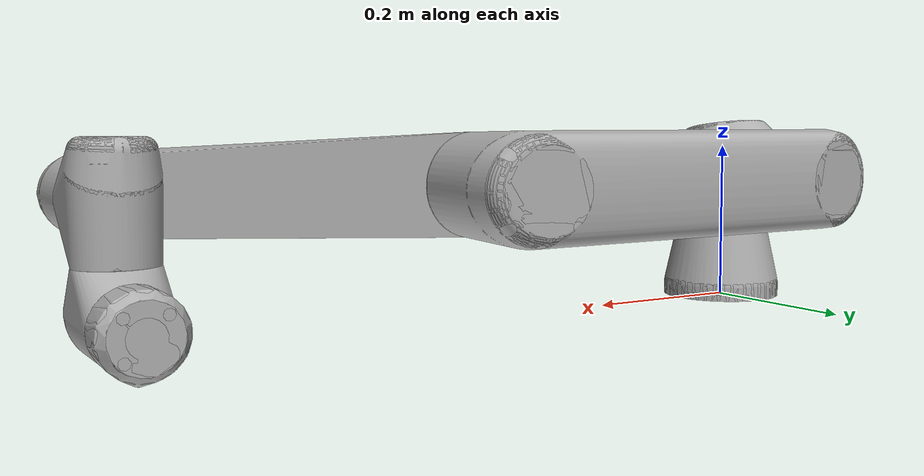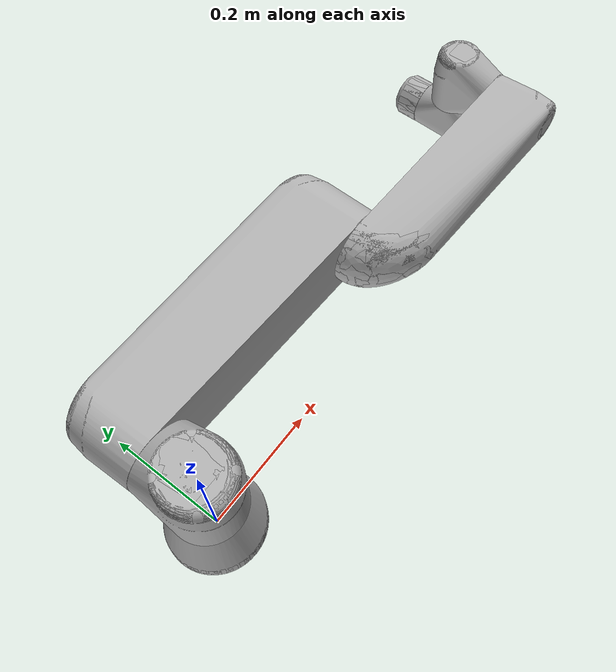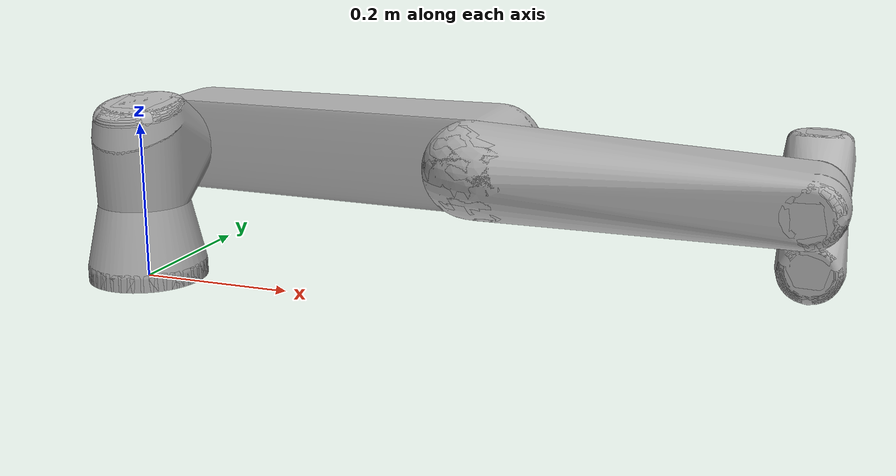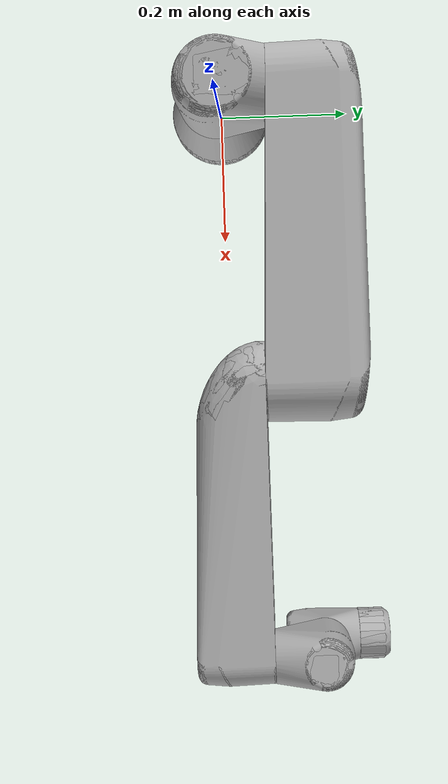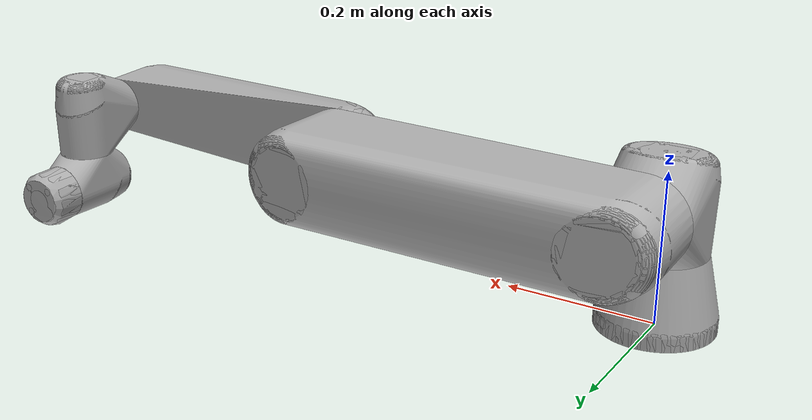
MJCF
<mujoco model="ur5e">
    <actuator>
        <!-- Physical limits of the actuator. -->
        <!-- Values taken from https://www.universal-robots.com/articles/ur-articles/max-joint-torques/ -->
        <motor ctrllimited="true" ctrlrange="-150.0 150.0" joint="shoulder_pan_joint" name="torq_j1"/>
        <motor ctrllimited="true" ctrlrange="-150.0 150.0" joint="shoulder_lift_joint" name="torq_j2"/>
        <motor ctrllimited="true" ctrlrange="-150.0 150.0" joint="elbow_joint" name="torq_j3"/>
        <motor ctrllimited="true" ctrlrange="-28.0 28.0" joint="wrist_1_joint" name="torq_j4"/>
        <motor ctrllimited="true" ctrlrange="-28.0 28.0" joint="wrist_2_joint" name="torq_j5"/>
        <motor ctrllimited="true" ctrlrange="-28.0 28.0" joint="wrist_3_joint" name="torq_j6"/>
    </actuator>
    <asset>
        <mesh name="base" file="meshes/base.stl" />
        <mesh name="shoulder" file="meshes/shoulder.stl" />
        <mesh name="upperarm" file="meshes/upperarm.stl" />
        <mesh name="forearm" file="meshes/forearm.stl" />
        <mesh name="wrist1" file="meshes/wrist1.stl" />
        <mesh name="wrist2" file="meshes/wrist2.stl" />
        <mesh name="wrist3" file="meshes/wrist3.stl" />
        <mesh name="base_vis" file="meshes/base_vis.stl" />
        <mesh name="shoulder_vis" file="meshes/shoulder_vis.stl" />
        <mesh name="upperarm_vis" file="meshes/upperarm_vis.stl" />
        <mesh name="forearm_vis" file="meshes/forearm_vis.stl" />
        <mesh name="wrist1_vis" file="meshes/wrist1_vis.stl" />
        <mesh name="wrist2_vis" file="meshes/wrist2_vis.stl" />
        <mesh name="wrist3_vis" file="meshes/wrist3_vis.stl" />
    </asset>
    <worldbody>
        <body name="base" pos="0 0 0">
            <!-- robot view -->
            <camera mode="fixed" name="robotview" pos="1.0 0 0.4" quat="0.653 0.271 0.271 0.653"/>
            <!-- mount attached here -->
            <geom type="mesh" contype="0" conaffinity="0" group="1" rgba="0.7 0.7 0.7 1" quat="0.707 0.707 0 0" mesh="base_vis" />
            <geom type="mesh" rgba="0.7 0.7 0.7 1" mesh="base" name="base_col"/>
            <body name="shoulder_link" pos="0 0 0.163">
                <inertial pos="0 0 0" mass="3.7" diaginertia="0.0102675 0.0102675 0.00666" />
                <joint name="shoulder_pan_joint" pos="0 0 0" axis="0 0 1" limited="true" range="-6.28319 6.28319" damping="0.001" frictionloss="0.01" />
                <geom type="mesh" contype="0" conaffinity="0" group="1" rgba="0.7 0.7 0.7 1" quat="0.707 0.707 0 0" mesh="shoulder_vis" name="shoulder_visual" />
                <geom type="mesh" rgba="0.7 0.7 0.7 1" mesh="shoulder" name="shoulder_col" />
                <body name="upper_arm_link" pos="0 0.138 0" quat="0.707107 0 0.707107 0">
                    <inertial pos="0 0 0.2125" mass="8.393" diaginertia="0.133886 0.133886 0.0151074" />
                    <joint name="shoulder_lift_joint" pos="0 0 0" axis="0 1 0" limited="true" range="-6.28319 6.28319" damping="0.001" frictionloss="0.01" />
                    <geom type="mesh" contype="0" conaffinity="0" group="1" rgba="0.7 0.7 0.7 1" quat="0.707 0.707 0 0" mesh="upperarm_vis" name="upperarm_visual" />
                    <geom type="mesh" rgba="0.7 0.7 0.7 1" mesh="upperarm" name="upperarm_col"/>
                    <body name="forearm_link" pos="0 -0.131 0.425">
                        <inertial pos="0 0 0.196" mass="2.275" diaginertia="0.0311796 0.0311796 0.004095" />
                        <joint name="elbow_joint" pos="0 0 0" axis="0 1 0" limited="true" range="-3.14159 3.14159" damping="0.001" frictionloss="0.01" />
                        <geom type="mesh" contype="0" conaffinity="0" group="1" rgba="0.7 0.7 0.7 1" quat="0.707 0.707 0 0" mesh="forearm_vis" name="forearm_visual" />
                        <geom type="mesh" rgba="0.7 0.7 0.7 1" mesh="forearm" name="forearm_col"/>
                        <body name="wrist_1_link" pos="0 0 0.392" quat="0.707107 0 0.707107 0">
                            <inertial pos="0 0.127 0" mass="1.219" diaginertia="0.0025599 0.0025599 0.0021942" />
                            <joint name="wrist_1_joint" pos="0 0 0" axis="0 1 0" limited="true" range="-6.28319 6.28319" damping="0.001" frictionloss="0.01" />
                            <geom type="mesh" contype="0" conaffinity="0" group="1" rgba="0.7 0.7 0.7 1" quat="0.707 0.707 0 0" mesh="wrist1_vis" name="wrist1_visual" />
                            <geom type="mesh" rgba="0.7 0.7 0.7 1" mesh="wrist1" name="wrist1_col" />
                            <body name="wrist_2_link" pos="0 0.127 0">
                                <inertial pos="0 0 0.1" mass="1.219" diaginertia="0.0025599 0.0025599 0.0021942" />
                                <joint name="wrist_2_joint" pos="0 0 0" axis="0 0 1" limited="true" range="-6.28319 6.28319" damping="0.001" frictionloss="0.01" />
                                <geom type="mesh" contype="0" conaffinity="0" group="1" rgba="0.7 0.7 0.7 1" quat="0.707 0.707 0 0" mesh="wrist2_vis" name="wrist2_visual" />
                                <geom type="mesh" rgba="0.7 0.7 0.7 1" mesh="wrist2" name="wrist2_col" />
                                <body name="wrist_3_link" pos="0 0 0.1">
                                    <inertial pos="0 0.0771683 0" quat="0.707107 0 0 0.707107" mass="0.1889" diaginertia="0.000132134 9.90863e-05 9.90863e-05" />
                                    <joint name="wrist_3_joint" pos="0 0 0" axis="0 1 0" limited="true" range="-6.28319 6.28319" damping="0.001" frictionloss="0.01" />
                                    <geom type="mesh" contype="0" conaffinity="0" group="1" rgba="0.7 0.7 0.7 1" quat="0.707 0.707 0 0" mesh="wrist3_vis" name="wrist3_visual" />
                                    <geom type="mesh" rgba="0.7 0.7 0.7 1" mesh="wrist3" name="wrist3_col" />
                                    <geom size="0.005 0.005 0.005" pos="0 0.09 0" quat="0.707107 0 0 0.707107" type="box" name="wrist3_col2"/>
                                    <body name="right_hand" pos="0 0.098 0" quat="0.707 -0.707 0 0" >
                                        <!-- This camera points out from the eef. -->
                                        <camera mode="fixed" name="eye_in_hand" pos="0.05 0 0" quat="0 0.707108 0.707108 0" fovy="75"/>
                                        <!-- To add gripper -->
                                    </body>
                                </body>
                            </body>
                        </body>
                    </body>
                </body>
            </body>
        </body>
    </worldbody>
</mujoco>
